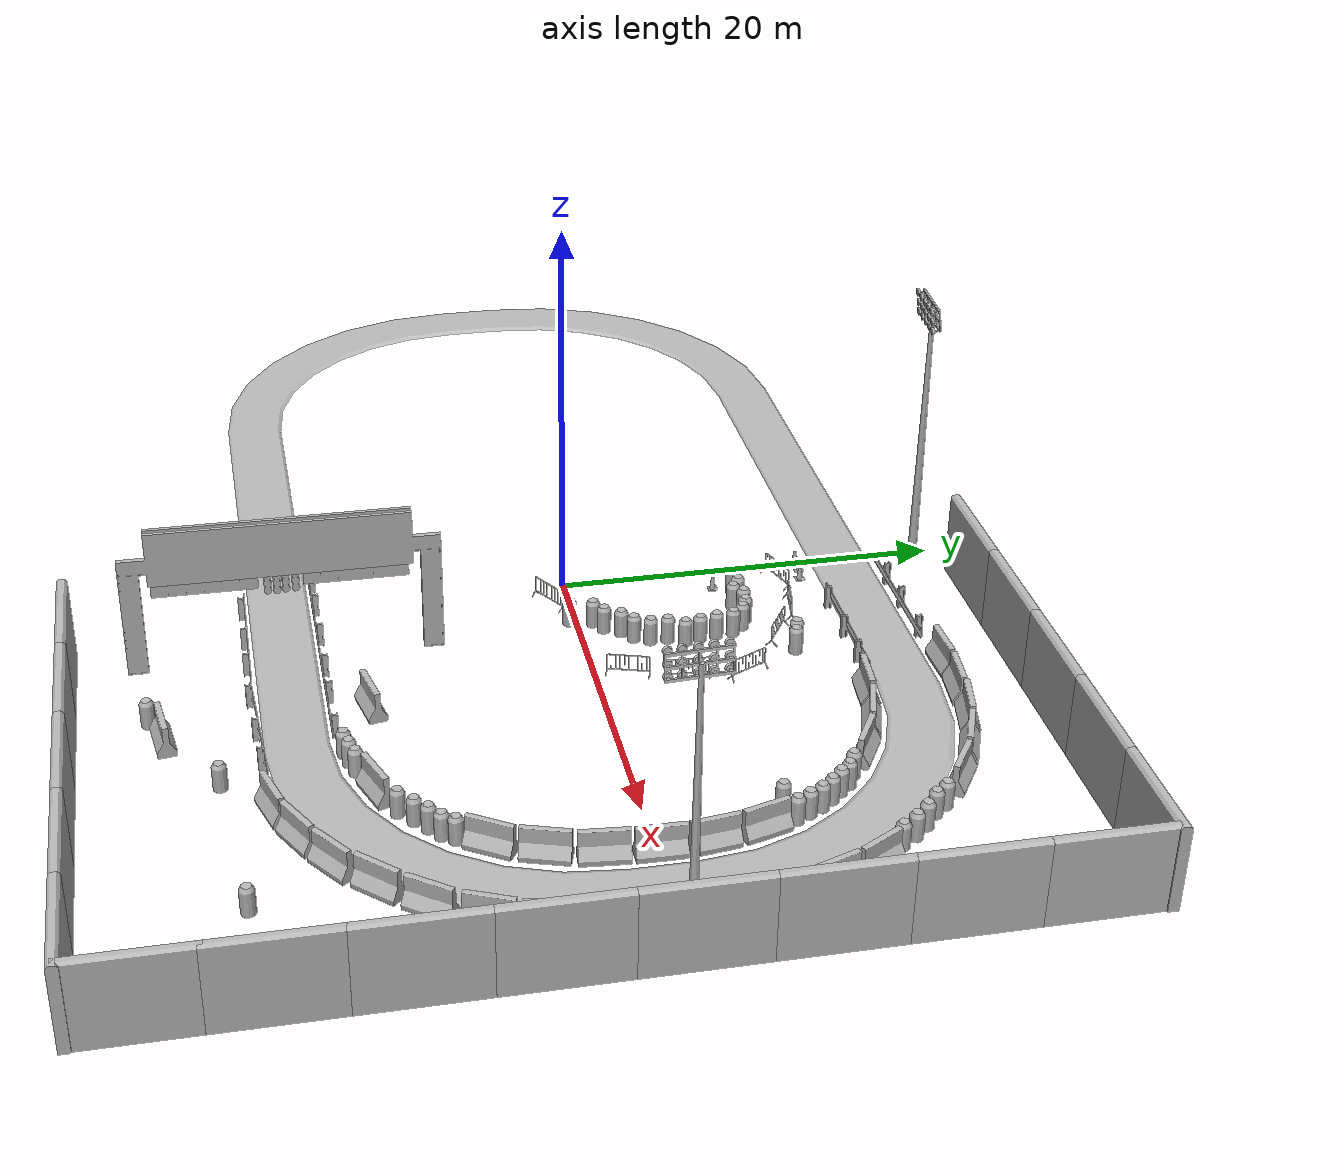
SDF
<sdf version="1.6">
 <world name="default">
  <model name="aws_robomaker_racetrack_Billboard_01">
   <include><uri>model://aws_robomaker_racetrack_Billboard_01</uri></include>
   <pose>4.32789 -14.8431 -2e-06 0 1e-06 1.56416</pose>
  </model>
  <model name="aws_robomaker_racetrack_CrashworthBucket_01_04">
   <include><uri>model://aws_robomaker_racetrack_CrashworthBucket_01</uri></include>
   <pose>2.35672 8.58743 0.054 0 0 0.094608</pose>
  </model>
  <model name="aws_robomaker_racetrack_CrashworthBucket_01_05">
   <include><uri>model://aws_robomaker_racetrack_CrashworthBucket_01</uri></include>
   <pose>3.14399 8.69292 0 0 -0 0.292667</pose>
  </model>
  <model name="aws_robomaker_racetrack_CrashworthBucket_01_06">
   <include><uri>model://aws_robomaker_racetrack_CrashworthBucket_01</uri></include>
   <pose>5.18867 8.56895 0 0 0 -0.026658</pose>
  </model>
  <model name="aws_robomaker_racetrack_CrashworthBucket_01_07">
   <include><uri>model://aws_robomaker_racetrack_CrashworthBucket_01</uri></include>
   <pose>5.89383 8.24239 0.054 0 0 0</pose>
  </model>
  <model name="aws_robomaker_racetrack_CrashworthBucket_01_08">
   <include><uri>model://aws_robomaker_racetrack_CrashworthBucket_01</uri></include>
   <pose>8.58056 10.3426 0.054 0 0 0</pose>
  </model>
  <model name="aws_robomaker_racetrack_CrashworthBucket_01_09">
   <include><uri>model://aws_robomaker_racetrack_CrashworthBucket_01</uri></include>
   <pose>7.88227 10.5539 0.054 0 0 0</pose>
  </model>
  <model name="aws_robomaker_racetrack_CrashworthBucket_01_10">
   <include><uri>model://aws_robomaker_racetrack_CrashworthBucket_01</uri></include>
   <pose>22.2917 13.5697 0 0 -0 0</pose>
  </model>
  <model name="aws_robomaker_racetrack_CrashworthBucket_01_11">
   <include><uri>model://aws_robomaker_racetrack_CrashworthBucket_01</uri></include>
   <pose>22.9018 12.8693 0.054 0 0 0</pose>
  </model>
  <model name="aws_robomaker_racetrack_CrashworthBucket_01_12">
   <include><uri>model://aws_robomaker_racetrack_CrashworthBucket_01</uri></include>
   <pose>22.2128 6.62693 0.054 0 0 0</pose>
  </model>
  <model name="aws_robomaker_racetrack_CrashworthBucket_01_13">
   <include><uri>model://aws_robomaker_racetrack_CrashworthBucket_01</uri></include>
   <pose>20.9847 6.29253 0 0 -0 0</pose>
  </model>
  <model name="aws_robomaker_racetrack_CrashworthBucket_01_14">
   <include><uri>model://aws_robomaker_racetrack_CrashworthBucket_01</uri></include>
   <pose>24.073 -17.9303 0.054 0 0 0</pose>
  </model>
  <model name="aws_robomaker_racetrack_CrashworthBucket_01_15">
   <include><uri>model://aws_robomaker_racetrack_CrashworthBucket_01</uri></include>
   <pose>20.8422 -8.59507 0.054 0 0 0.012499</pose>
  </model>
  <model name="aws_robomaker_racetrack_CrashworthBucket_01_16">
   <include><uri>model://aws_robomaker_racetrack_CrashworthBucket_01</uri></include>
   <pose>20.3649 -9.17417 0 0 -0 0.004768</pose>
  </model>
  <model name="aws_robomaker_racetrack_CrashworthBucket_01_17">
   <include><uri>model://aws_robomaker_racetrack_CrashworthBucket_01</uri></include>
   <pose>19.7995 -9.67862 0.054 0 0 -0.003254</pose>
  </model>
  <model name="aws_robomaker_racetrack_CrashworthBucket_01_18">
   <include><uri>model://aws_robomaker_racetrack_CrashworthBucket_01</uri></include>
   <pose>19.1471 -10.2467 0.054 0 0 0</pose>
  </model>
  <model name="aws_robomaker_racetrack_CrashworthBucket_01_19">
   <include><uri>model://aws_robomaker_racetrack_CrashworthBucket_01</uri></include>
   <pose>18.3999 -10.9106 0.054 0 0 0</pose>
  </model>
  <model name="aws_robomaker_racetrack_CrashworthBucket_01_22">
   <include><uri>model://aws_robomaker_racetrack_CrashworthBucket_01</uri></include>
   <pose>14.1427 -12.6734 0.054 0 0 0</pose>
  </model>
  <model name="aws_robomaker_racetrack_CrashworthBucket_01_23">
   <include><uri>model://aws_robomaker_racetrack_CrashworthBucket_01</uri></include>
   <pose>14.9254 -12.4456 0.054 0 0 0</pose>
  </model>
  <model name="aws_robomaker_racetrack_CrashworthBucket_01_25">
   <include><uri>model://aws_robomaker_racetrack_CrashworthBucket_01</uri></include>
   <pose>13.3868 -12.8508 0.054 0 0 0</pose>
  </model>
  <model name="aws_robomaker_racetrack_CrashworthBucket_01_26">
   <include><uri>model://aws_robomaker_racetrack_CrashworthBucket_01</uri></include>
   <pose>9.22311 -21.8198 0.054 0 0 0</pose>
  </model>
  <model name="aws_robomaker_racetrack_CrashworthBucket_01_27">
   <include><uri>model://aws_robomaker_racetrack_CrashworthBucket_01</uri></include>
   <pose>3.82438 -0.358379 0 0 -0 0</pose>
  </model>
  <model name="aws_robomaker_racetrack_CrashworthBucket_01_28">
   <include><uri>model://aws_robomaker_racetrack_CrashworthBucket_01</uri></include>
   <pose>14.9648 -18.6736 0.054 0 0 0</pose>
  </model>
  <model name="aws_robomaker_racetrack_CrashworthBucket_01_29">
   <include><uri>model://aws_robomaker_racetrack_CrashworthBucket_01</uri></include>
   <pose>23.6827 12.1956 0.054 0 0 0</pose>
  </model>
  <model name="aws_robomaker_racetrack_CrashworthBucket_01_30">
   <include><uri>model://aws_robomaker_racetrack_CrashworthBucket_01</uri></include>
   <pose>24.3346 11.4874 0.054 0 0 0</pose>
  </model>
  <model name="aws_robomaker_racetrack_CrashworthBucket_01_31">
   <include><uri>model://aws_robomaker_racetrack_CrashworthBucket_01</uri></include>
   <pose>24.8882 10.6788 0.054 0 0 0</pose>
  </model>
  <model name="aws_robomaker_racetrack_CrashworthBucket_01_32">
   <include><uri>model://aws_robomaker_racetrack_CrashworthBucket_01</uri></include>
   <pose>20.5304 9.13561 0.054 0 0 -0.001449</pose>
  </model>
  <model name="aws_robomaker_racetrack_CrashworthBucket_01_33">
   <include><uri>model://aws_robomaker_racetrack_CrashworthBucket_01</uri></include>
   <pose>19.3714 10.0864 0.054 0 0 0</pose>
  </model>
  <model name="aws_robomaker_racetrack_CrashworthBucket_01_34">
   <include><uri>model://aws_robomaker_racetrack_CrashworthBucket_01</uri></include>
   <pose>20.0016 9.69426 0 0 0 -0.00182</pose>
  </model>
  <model name="aws_robomaker_racetrack_CrashworthBucket_01_35">
   <include><uri>model://aws_robomaker_racetrack_CrashworthBucket_01</uri></include>
   <pose>21.0478 8.57525 0.054 0 0 -0.000349</pose>
  </model>
  <model name="aws_robomaker_racetrack_CrashworthBucket_01_36">
   <include><uri>model://aws_robomaker_racetrack_CrashworthBucket_01</uri></include>
   <pose>21.5218 7.97169 0.054 0 0 0</pose>
  </model>
  <model name="aws_robomaker_racetrack_CrashworthBucket_01_37">
   <include><uri>model://aws_robomaker_racetrack_CrashworthBucket_01</uri></include>
   <pose>21.8874 7.29413 0.054 0 0 0</pose>
  </model>
  <model name="aws_robomaker_racetrack_CrashworthBucket_01_38">
   <include><uri>model://aws_robomaker_racetrack_CrashworthBucket_01</uri></include>
   <pose>6.38383 7.63289 0.054 0 0 0</pose>
  </model>
  <model name="aws_robomaker_racetrack_CrashworthBucket_01_39">
   <include><uri>model://aws_robomaker_racetrack_CrashworthBucket_01</uri></include>
   <pose>6.48514 6.73841 0.054 0 0 0</pose>
  </model>
  <model name="aws_robomaker_racetrack_CrashworthBucket_01_40">
   <include><uri>model://aws_robomaker_racetrack_CrashworthBucket_01</uri></include>
   <pose>6.63137 5.86016 0.054 0 0 0</pose>
  </model>
  <model name="aws_robomaker_racetrack_CrashworthBucket_01_41">
   <include><uri>model://aws_robomaker_racetrack_CrashworthBucket_01</uri></include>
   <pose>6.84089 5.04433 0.054 0 0 0</pose>
  </model>
  <model name="aws_robomaker_racetrack_CrashworthBucket_01_42">
   <include><uri>model://aws_robomaker_racetrack_CrashworthBucket_01</uri></include>
   <pose>6.41586 4.22597 0.054 0 0 0</pose>
  </model>
  <model name="aws_robomaker_racetrack_CrashworthBucket_01_43">
   <include><uri>model://aws_robomaker_racetrack_CrashworthBucket_01</uri></include>
   <pose>4.45229 8.66174 0.054 0 0 0.095583</pose>
  </model>
  <model name="aws_robomaker_racetrack_CrashworthBucket_01_45">
   <include><uri>model://aws_robomaker_racetrack_CrashworthBucket_01</uri></include>
   <pose>5.3642 2.03973 0.054 0 0 -0.008872</pose>
  </model>
  <model name="aws_robomaker_racetrack_CrashworthBucket_01_46">
   <include><uri>model://aws_robomaker_racetrack_CrashworthBucket_01</uri></include>
   <pose>5.91311 2.58362 0 0 0 -0.010849</pose>
  </model>
  <model name="aws_robomaker_racetrack_CrashworthBucket_01_47">
   <include><uri>model://aws_robomaker_racetrack_CrashworthBucket_01</uri></include>
   <pose>6.38729 3.3437 0.054 0 0 0</pose>
  </model>
  <model name="aws_robomaker_racetrack_CrashworthBucket_01_48">
   <include><uri>model://aws_robomaker_racetrack_CrashworthBucket_01</uri></include>
   <pose>4.78436 1.25544 0 0 0 -0.004687</pose>
  </model>
  <model name="aws_robomaker_racetrack_CrashworthBucket_01_49">
   <include><uri>model://aws_robomaker_racetrack_CrashworthBucket_01</uri></include>
   <pose>4.1948 0.806848 0.054 0 0 -0.002707</pose>
  </model>
  <model name="aws_robomaker_racetrack_CrashworthBucket_01_53">
   <include><uri>model://aws_robomaker_racetrack_CrashworthBucket_01</uri></include>
   <pose>3.7947 8.27498 0 0 0 -0.244875</pose>
  </model>
  <model name="aws_robomaker_racetrack_FenceMesh_01_00">
   <include><uri>model://aws_robomaker_racetrack_FenceMesh_01</uri></include>
   <pose>4.2331 -11.1761 5.05223 0 0 -0.006038</pose>
  </model>
  <model name="aws_robomaker_racetrack_FenceMesh_01_01">
   <include><uri>model://aws_robomaker_racetrack_FenceMesh_01</uri></include>
   <pose>4.16406 -18.6269 5.05223 0 0 -0.006038</pose>
  </model>
  <model name="aws_robomaker_racetrack_FenceMesh_01_02">
   <include><uri>model://aws_robomaker_racetrack_FenceMesh_01</uri></include>
   <pose>4.63223 -18.6067 5.05223 0 0 -0.006038</pose>
  </model>
  <model name="aws_robomaker_racetrack_FenceMesh_01_03">
   <include><uri>model://aws_robomaker_racetrack_FenceMesh_01</uri></include>
   <pose>4.67467 -11.1966 5.05223 0 0 -0.006038</pose>
  </model>
  <model name="aws_robomaker_racetrack_Fence_01_00">
   <include><uri>model://aws_robomaker_racetrack_Fence_01</uri></include>
   <pose>7.552996 13.158695 0 0 0 -1.57272</pose>
  </model>
  <model name="aws_robomaker_racetrack_Fence_01_06">
   <include><uri>model://aws_robomaker_racetrack_Fence_01</uri></include>
   <pose>3.247635 -16.899557 0.054  0 0 -1.581650</pose>
  </model>
  <model name="aws_robomaker_racetrack_Fence_01_07">
   <include><uri>model://aws_robomaker_racetrack_Fence_01</uri></include>
   <pose>11.364270 -16.813890 0.054  0.0 0.0 -1.525504</pose>
  </model>
  <model name="aws_robomaker_racetrack_Fence_01_10">
   <include><uri>model://aws_robomaker_racetrack_Fence_01</uri></include>
   <pose>0.720398 -13.134610 0.054671 0 -0 1.57158</pose>
  </model>
  <model name="aws_robomaker_racetrack_Fence_01_11">
   <include><uri>model://aws_robomaker_racetrack_Fence_01</uri></include>
   <pose>8.89898 -13.134610 0.054638 0.0 0.0 1.572679</pose>
  </model>
  <model name="aws_robomaker_racetrack_Fence_01_15">
   <include><uri>model://aws_robomaker_racetrack_Fence_01</uri></include>
   <pose>5.475008 16.818918 0.054  0 -0 1.57158</pose>
  </model>
  <model name="aws_robomaker_racetrack_Fence_02_01">
   <include><uri>model://aws_robomaker_racetrack_Fence_02</uri></include>
   <pose>9.06357 1.626 0 0 0 -0.300407</pose>
  </model>
  <model name="aws_robomaker_racetrack_Fence_02_05">
   <include><uri>model://aws_robomaker_racetrack_Fence_02</uri></include>
   <pose>4.57205 11.1353 0 0 0 -1.73608</pose>
  </model>
  <model name="aws_robomaker_racetrack_Fence_02_06">
   <include><uri>model://aws_robomaker_racetrack_Fence_02</uri></include>
   <pose>6.8958583 9.887979 0 0 0 -2.140475</pose>
  </model>
  <model name="aws_robomaker_racetrack_Fence_02_07">
   <include><uri>model://aws_robomaker_racetrack_Fence_02</uri></include>
   <pose>1.60246 11.2143 0 0 -0 1.90339</pose>
  </model>
  <model name="aws_robomaker_racetrack_Fence_02_10">
   <include><uri>model://aws_robomaker_racetrack_Fence_02</uri></include>
   <pose>9.89165 4.45225 0 0 0 -0.045392</pose>
  </model>
  <model name="aws_robomaker_racetrack_Fence_02_11">
   <include><uri>model://aws_robomaker_racetrack_Fence_02</uri></include>
   <pose>10.0686 7.48939 0 0 -0 0.450699</pose>
  </model>
  <model name="aws_robomaker_racetrack_Fence_02_12">
   <include><uri>model://aws_robomaker_racetrack_Fence_02</uri></include>
   <pose>1.65856 -1.03383 0 0 0 -1.02955</pose>
  </model>
  <model name="aws_robomaker_racetrack_RaceStartLight_01_00">
   <include><uri>model://aws_robomaker_racetrack_RaceStartLight_01</uri></include>
   <pose>4.13359 -14.1692 5.08709 0 -0 0</pose>
  </model>
  <model name="aws_robomaker_racetrack_RaceStartLight_01_01">
   <include><uri>model://aws_robomaker_racetrack_RaceStartLight_01</uri></include>
   <pose>4.14665 -14.6522 5.08709 0 -0 0</pose>
  </model>
  <model name="aws_robomaker_racetrack_RaceStartLight_01_02">
   <include><uri>model://aws_robomaker_racetrack_RaceStartLight_01</uri></include>
   <pose>4.21676 -15.0918 5.08709 0 -0 0</pose>
  </model>
  <model name="aws_robomaker_racetrack_RaceStartLight_01_03">
   <include><uri>model://aws_robomaker_racetrack_RaceStartLight_01</uri></include>
   <pose>4.17594 -15.5526 5.08709 0 -0 0</pose>
  </model>
  <model name="aws_robomaker_racetrack_StonePier_01_05">
   <include><uri>model://aws_robomaker_racetrack_StonePier_01</uri></include>
   <pose>11.0892 17.2043 0.054 0 -0.0 0.029389</pose>
  </model>
  <model name="aws_robomaker_racetrack_StonePier_01_06">
   <include><uri>model://aws_robomaker_racetrack_StonePier_01</uri></include>
   <pose>13.5633 17.1121 0.054 0 -0.0 -0.108086</pose>
  </model>
  <model name="aws_robomaker_racetrack_StonePier_01_07">
   <include><uri>model://aws_robomaker_racetrack_StonePier_01</uri></include>
   <pose>16.0013 16.8104 0.054 0 -0.0 -0.206147</pose>
  </model>
  <model name="aws_robomaker_racetrack_StonePier_01_08">
   <include><uri>model://aws_robomaker_racetrack_StonePier_01</uri></include>
   <pose>18.4263 16.0384 0.054 0 -0.0 -0.379591</pose>
  </model>
  <model name="aws_robomaker_racetrack_StonePier_01_09">
   <include><uri>model://aws_robomaker_racetrack_StonePier_01</uri></include>
   <pose>17.8323 11.1467 0.054 0 -0.0 -0.536699</pose>
  </model>
  <model name="aws_robomaker_racetrack_StonePier_01_10">
   <include><uri>model://aws_robomaker_racetrack_StonePier_01</uri></include>
   <pose>22.7563 5.03589 0.054 0 -0.0 -1.28348</pose>
  </model>
  <model name="aws_robomaker_racetrack_StonePier_01_11">
   <include><uri>model://aws_robomaker_racetrack_StonePier_01</uri></include>
   <pose>23.2964 2.57509 0.054 -0 -0.0 -1.43498</pose>
  </model>
  <model name="aws_robomaker_racetrack_StonePier_01_12">
   <include><uri>model://aws_robomaker_racetrack_StonePier_01</uri></include>
   <pose>23.4326 0.10745 0.054 -0 -0.0 -1.58404</pose>
  </model>
  <model name="aws_robomaker_racetrack_StonePier_01_13">
   <include><uri>model://aws_robomaker_racetrack_StonePier_01</uri></include>
   <pose>23.2774 -2.40527 0.054 0 -0.0 -1.65922</pose>
  </model>
  <model name="aws_robomaker_racetrack_StonePier_01_14">
   <include><uri>model://aws_robomaker_racetrack_StonePier_01</uri></include>
   <pose>22.705 -4.89186 0.054 -0 -0.0 -1.88566</pose>
  </model>
  <model name="aws_robomaker_racetrack_StonePier_01_15">
   <include><uri>model://aws_robomaker_racetrack_StonePier_01</uri></include>
   <pose>21.6688 -7.19526 0.054 0 -0.0 -2.13625</pose>
  </model>
  <model name="aws_robomaker_racetrack_StonePier_01_16">
   <include><uri>model://aws_robomaker_racetrack_StonePier_01</uri></include>
   <pose>28.1211 -0.475719 0.054 0 -0.0 -1.59506</pose>
  </model>
  <model name="aws_robomaker_racetrack_StonePier_01_17">
   <include><uri>model://aws_robomaker_racetrack_StonePier_01</uri></include>
   <pose>16.7061 -11.7058 0.054 -0 -0.0 -2.7953</pose>
  </model>
  <model name="aws_robomaker_racetrack_StonePier_01_18">
   <include><uri>model://aws_robomaker_racetrack_StonePier_01</uri></include>
   <pose>28.0027 -3.03906 0.054 0 -0.0 -1.68291</pose>
  </model>
  <model name="aws_robomaker_racetrack_StonePier_01_19">
   <include><uri>model://aws_robomaker_racetrack_StonePier_01</uri></include>
   <pose>9.84486 -11.2119 0.054 0 -0.0 -2.93657</pose>
  </model>
  <model name="aws_robomaker_racetrack_StonePier_01_20">
   <include><uri>model://aws_robomaker_racetrack_StonePier_01</uri></include>
   <pose>10.8625 -21.1556 0.054 -0 -0.0 0.135159</pose>
  </model>
  <model name="aws_robomaker_racetrack_StonePier_01_21">
   <include><uri>model://aws_robomaker_racetrack_StonePier_01</uri></include>
   <pose>17.2914 -16.4156 0.054 0 -0.0 0.298911</pose>
  </model>
  <model name="aws_robomaker_racetrack_StonePier_01_22">
   <include><uri>model://aws_robomaker_racetrack_StonePier_01</uri></include>
   <pose>19.6208 -15.4615 0.054 0 -0.0 0.489077</pose>
  </model>
  <model name="aws_robomaker_racetrack_StonePier_01_23">
   <include><uri>model://aws_robomaker_racetrack_StonePier_01</uri></include>
   <pose>21.7939 -14.1476 0.054 0 -0.0 0.61668</pose>
  </model>
  <model name="aws_robomaker_racetrack_StonePier_01_24">
   <include><uri>model://aws_robomaker_racetrack_StonePier_01</uri></include>
   <pose>23.6698 -12.3608 0.054 0 -0.0 0.810318</pose>
  </model>
  <model name="aws_robomaker_racetrack_StonePier_01_25">
   <include><uri>model://aws_robomaker_racetrack_StonePier_01</uri></include>
   <pose>25.3929 -10.3347 0.054 -0 -0.0 0.931507</pose>
  </model>
  <model name="aws_robomaker_racetrack_StonePier_01_26">
   <include><uri>model://aws_robomaker_racetrack_StonePier_01</uri></include>
   <pose>27.7466 4.53211 0.054 0 -0.0 1.75246</pose>
  </model>
  <model name="aws_robomaker_racetrack_StonePier_01_27">
   <include><uri>model://aws_robomaker_racetrack_StonePier_01</uri></include>
   <pose>27.0691 6.99271 0.054 0 -0.0 1.91654</pose>
  </model>
  <model name="aws_robomaker_racetrack_StonePier_01_28">
   <include><uri>model://aws_robomaker_racetrack_StonePier_01</uri></include>
   <pose>26.0366 9.29805 0.054 0 -0.0 2.08782</pose>
  </model>
  <model name="aws_robomaker_racetrack_StonePier_01_29">
   <include><uri>model://aws_robomaker_racetrack_StonePier_01</uri></include>
   <pose>26.7385 -7.99231 0.054 -0 -0.0 1.16098</pose>
  </model>
  <model name="aws_robomaker_racetrack_StonePier_01_30">
   <include><uri>model://aws_robomaker_racetrack_StonePier_01</uri></include>
   <pose>27.5962 -5.54706 0.054 0 -0.0 1.36231</pose>
  </model>
  <model name="aws_robomaker_racetrack_StonePier_01_31">
   <include><uri>model://aws_robomaker_racetrack_StonePier_01</uri></include>
   <pose>28.0314 1.9989 0.054 0 -0.0 -1.53351</pose>
  </model>
  <model name="aws_robomaker_racetrack_StonePier_01_32">
   <include><uri>model://aws_robomaker_racetrack_StonePier_01</uri></include>
   <pose>20.6714 14.8473 0.054 0 -0.0 -0.587598</pose>
  </model>
  <model name="aws_robomaker_racetrack_StonePier_01_33">
   <include><uri>model://aws_robomaker_racetrack_StonePier_01</uri></include>
   <pose>12.9654 12.6879 0.054 0 -0.0 -0.096781</pose>
  </model>
  <model name="aws_robomaker_racetrack_StonePier_01_34">
   <include><uri>model://aws_robomaker_racetrack_StonePier_01</uri></include>
   <pose>15.5357 12.1477 0.054 -0 0.00036 -0.29956</pose>
  </model>
  <model name="aws_robomaker_racetrack_Track_05_00">
   <include><uri>model://aws_robomaker_racetrack_Track_05</uri></include>
   <pose>0 0 0.051 0 -0 0</pose>
  </model>
  <model name="aws_robomaker_racetrack_TrafficCone_01_05">
   <include><uri>model://aws_robomaker_racetrack_TrafficCone_01</uri></include>
   <pose>1.63274 12.4879 0 0 -0 0</pose>
  </model>
  <model name="aws_robomaker_racetrack_TrafficCone_01_06">
   <include><uri>model://aws_robomaker_racetrack_TrafficCone_01</uri></include>
   <pose>0.741449 12.6798 0 0 -0 0</pose>
  </model>
  <model name="aws_robomaker_racetrack_TrafficCone_01_07">
   <include><uri>model://aws_robomaker_racetrack_TrafficCone_01</uri></include>
   <pose>-0.041804 12.6793 0 0 -0 0</pose>
  </model>
  <model name="aws_robomaker_racetrack_TrafficCone_01_13">
   <include><uri>model://aws_robomaker_racetrack_TrafficCone_01</uri></include>
   <pose>1.78217 7.69024 0 0 -0 0</pose>
  </model>
  <model name="aws_robomaker_racetrack_Light_01_01">
   <include><uri>model://aws_robomaker_racetrack_Light_01</uri></include>
   <pose>0.041158 19.0887 0 0 -0 3.09146</pose>
  </model>
  <model name="aws_robomaker_racetrack_Light_01_02">
   <include><uri>model://aws_robomaker_racetrack_Light_01</uri></include>
   <pose>29.8469 -0.049215 0 0 -0 1.63215</pose>
  </model>
  <model name="aws_robomaker_racetrack_Wall_01_00">
   <include><uri>model://aws_robomaker_racetrack_Wall_01</uri></include>
   <pose>10.772 20.6862 0 0 -0 0</pose>
  </model>
  <model name="aws_robomaker_racetrack_Wall_01_01">
   <include><uri>model://aws_robomaker_racetrack_Wall_01</uri></include>
   <pose>4.94795 20.6846 0 0 -0 0</pose>
  </model>
  <model name="aws_robomaker_racetrack_Wall_01_16">
   <include><uri>model://aws_robomaker_racetrack_Wall_01</uri></include>
   <pose>5.12343 -25.507 0 0 -0 0</pose>
  </model>
  <model name="aws_robomaker_racetrack_Wall_01_17">
   <include><uri>model://aws_robomaker_racetrack_Wall_01</uri></include>
   <pose>10.9489 -25.511 0 0 -0 0</pose>
  </model>
  <model name="aws_robomaker_racetrack_Wall_01_18">
   <include><uri>model://aws_robomaker_racetrack_Wall_01</uri></include>
   <pose>16.7552 -25.5119 0 0 -0 0</pose>
  </model>
  <model name="aws_robomaker_racetrack_Wall_01_19">
   <include><uri>model://aws_robomaker_racetrack_Wall_01</uri></include>
   <pose>22.5772 -25.5071 0 0 -0 0</pose>
  </model>
  <model name="aws_robomaker_racetrack_Wall_01_20">
   <include><uri>model://aws_robomaker_racetrack_Wall_01</uri></include>
   <pose>28.3975 -25.5099 0 0 -0 0</pose>
  </model>
  <model name="aws_robomaker_racetrack_Wall_01_21">
   <include><uri>model://aws_robomaker_racetrack_Wall_01</uri></include>
   <pose>16.5737 20.6849 0 0 -0 0</pose>
  </model>
  <model name="aws_robomaker_racetrack_Wall_01_22">
   <include><uri>model://aws_robomaker_racetrack_Wall_01</uri></include>
   <pose>22.3987 20.6806 0 0 -0 0</pose>
  </model>
  <model name="aws_robomaker_racetrack_Wall_01_23">
   <include><uri>model://aws_robomaker_racetrack_Wall_01</uri></include>
   <pose>28.2373 20.6833 0 0 -0 0</pose>
  </model>
  <model name="aws_robomaker_racetrack_Wall_01_32">
   <include><uri>model://aws_robomaker_racetrack_Wall_01</uri></include>
   <pose>30.9522 -17.1105 0 0 -0 1.57459</pose>
  </model>
  <model name="aws_robomaker_racetrack_Wall_01_33">
   <include><uri>model://aws_robomaker_racetrack_Wall_01</uri></include>
   <pose>30.9711 -22.7005 0 0 -0 1.57459</pose>
  </model>
  <model name="aws_robomaker_racetrack_Wall_01_34">
   <include><uri>model://aws_robomaker_racetrack_Wall_01</uri></include>
   <pose>30.9317 -11.3127 0 0 -0 1.57459</pose>
  </model>
  <model name="aws_robomaker_racetrack_Wall_01_35">
   <include><uri>model://aws_robomaker_racetrack_Wall_01</uri></include>
   <pose>30.9092 -5.49982 0 0 -0 1.57459</pose>
  </model>
  <model name="aws_robomaker_racetrack_Wall_01_36">
   <include><uri>model://aws_robomaker_racetrack_Wall_01</uri></include>
   <pose>30.8878 0.333623 0 0 -0 1.57459</pose>
  </model>
  <model name="aws_robomaker_racetrack_Wall_01_37">
   <include><uri>model://aws_robomaker_racetrack_Wall_01</uri></include>
   <pose>30.8663 6.16983 0 0 -0 1.57459</pose>
  </model>
  <model name="aws_robomaker_racetrack_Wall_01_38">
   <include><uri>model://aws_robomaker_racetrack_Wall_01</uri></include>
   <pose>30.8445 11.977 0 0 -0 1.57459</pose>
  </model>
  <model name="aws_robomaker_racetrack_Wall_01_39">
   <include><uri>model://aws_robomaker_racetrack_Wall_01</uri></include>
   <pose>30.8212 17.8155 0 0 -0 1.57459</pose>
  </model>
  <model name="ground_plane">
   <pose>0 0 -1 0 -0 0</pose>
   <scale>1 1 1</scale>
   <link name="link">
    <pose>0 0 -1 0 -0 0</pose>
    <velocity>0 0 0 0 -0 0</velocity>
    <acceleration>0 0 0 0 -0 0</acceleration>
   </link>
  </model>
 </world>
</sdf>
